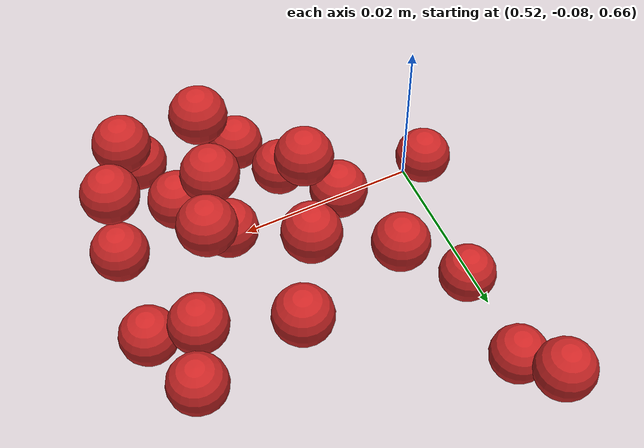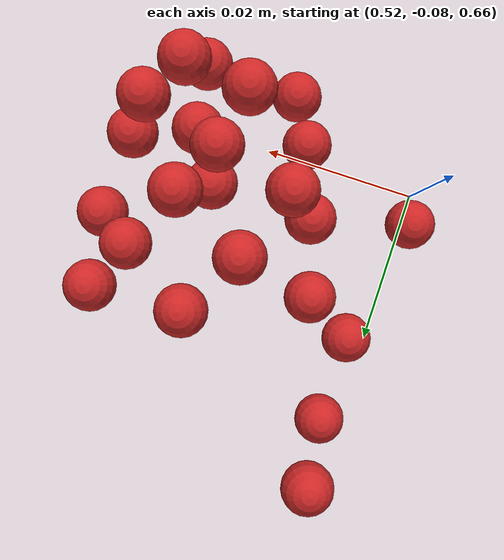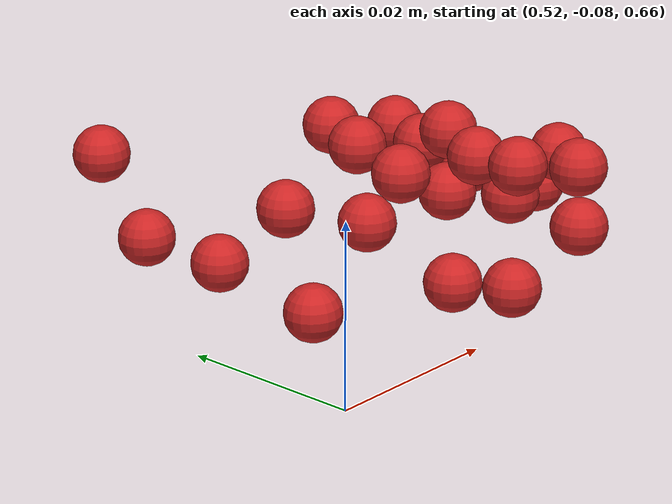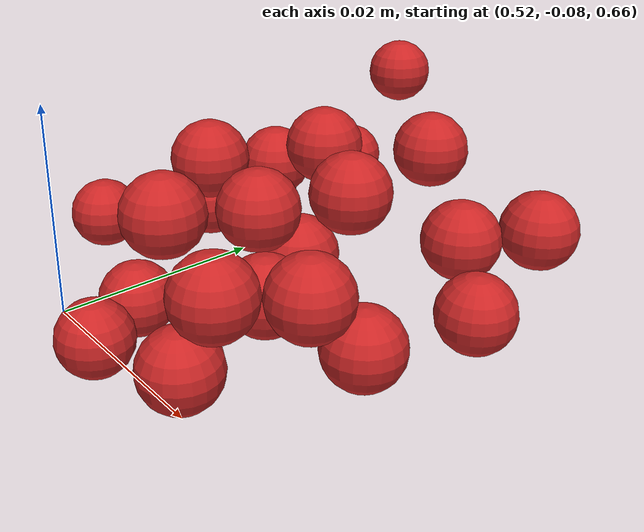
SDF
<sdf version="1.4">
 <world name="default">
  <model name="ground_plane">
   <static>1</static>
   <link name="link">
    <collision name="collision">
     <geometry><plane><normal>0 0 1</normal><size>100 100</size></plane></geometry>
     <surface><friction><ode><mu>100</mu><mu2>50</mu2></ode></friction></surface>
    </collision>
    <visual name="visual">
     <cast_shadows>0</cast_shadows>
     <geometry><plane><normal>0 0 1</normal><size>100 100</size></plane></geometry>
     <material>
      <script><uri>file://media/materials/scripts/gazebo.material</uri><name>Gazebo/Grey</name></script>
     </material>
    </visual>
    <velocity_decay><linear>0</linear><angular>0</angular></velocity_decay>
   </link>
  </model>
  <model name="sphere10">
   <pose>-0.003044 -0.032273 -0.057024 0.008619 -0.006674 -0.000614</pose>
   <link name="link">
    <pose>0.55276 -0.036781 0.732288 0 -0 0</pose>
    <inertial>
     <mass>0.0000001</mass>
     <inertia><ixx>0.00004</ixx><ixy>0</ixy><ixz>0</ixz><iyy>0.00004</iyy><iyz>0</iyz><izz>0.00004</izz></inertia>
    </inertial>
    <collision name="collision">
     <surface>
      <contact><ode><kp>1e+10</kp><kd>1</kd></ode></contact>
      <friction><ode><mu>0.01</mu><mu2>0.01</mu2></ode></friction>
     </surface>
     <geometry><sphere><radius>0.003</radius></sphere></geometry>
    </collision>
    <visual name="visual">
     <geometry><sphere><radius>0.003</radius></sphere></geometry>
     <material>
      <script><uri>file://media/materials/scripts/gazebo.material</uri><name>Gazebo/Red</name></script>
     </material>
    </visual>
    <velocity_decay><linear>0</linear><angular>0</angular></velocity_decay>
   </link>
   <static>0</static>
  </model>
  <model name="sphere14">
   <pose>-0.003198 -0.027274 -0.082089 0.003 -0.03486 0.001054</pose>
   <link name="link">
    <pose>0.55276 -0.030781 0.732288 0 -0 0</pose>
    <inertial>
     <mass>0.0000001</mass>
     <inertia><ixx>0.00004</ixx><ixy>0</ixy><ixz>0</ixz><iyy>0.00004</iyy><iyz>0</iyz><izz>0.00004</izz></inertia>
    </inertial>
    <collision name="collision">
     <surface>
      <contact><ode><kp>1e+10</kp><kd>1</kd></ode></contact>
      <friction><ode><mu>0.01</mu><mu2>0.01</mu2></ode></friction>
     </surface>
     <geometry><sphere><radius>0.003</radius></sphere></geometry>
    </collision>
    <visual name="visual">
     <geometry><sphere><radius>0.003</radius></sphere></geometry>
     <material>
      <script><uri>file://media/materials/scripts/gazebo.material</uri><name>Gazebo/Red</name></script>
     </material>
    </visual>
    <velocity_decay><linear>0</linear><angular>0</angular></velocity_decay>
   </link>
   <static>0</static>
  </model>
  <model name="sphere17">
   <pose>-0.008639 -0.035869 -0.069088 -0.001103 0.000647 -0.00359</pose>
   <link name="link">
    <pose>0.54676 -0.048781 0.738288 0 -0 0</pose>
    <inertial>
     <mass>0.0000001</mass>
     <inertia><ixx>0.00004</ixx><ixy>0</ixy><ixz>0</ixz><iyy>0.00004</iyy><iyz>0</iyz><izz>0.00004</izz></inertia>
    </inertial>
    <collision name="collision">
     <surface>
      <contact><ode><kp>1e+10</kp><kd>1</kd></ode></contact>
      <friction><ode><mu>0.01</mu><mu2>0.01</mu2></ode></friction>
     </surface>
     <geometry><sphere><radius>0.003</radius></sphere></geometry>
    </collision>
    <visual name="visual">
     <geometry><sphere><radius>0.003</radius></sphere></geometry>
     <material>
      <script><uri>file://media/materials/scripts/gazebo.material</uri><name>Gazebo/Red</name></script>
     </material>
    </visual>
    <velocity_decay><linear>0</linear><angular>0</angular></velocity_decay>
   </link>
   <static>0</static>
  </model>
  <model name="sphere53">
   <pose>-0.003036 -0.029592 -0.075829 -0.000146 0.00113 0.000371</pose>
   <link name="link">
    <pose>0.54676 -0.042781 0.750288 0 -0 0</pose>
    <inertial>
     <mass>0.0000001</mass>
     <inertia><ixx>0.00004</ixx><ixy>0</ixy><ixz>0</ixz><iyy>0.00004</iyy><iyz>0</iyz><izz>0.00004</izz></inertia>
    </inertial>
    <collision name="collision">
     <surface>
      <contact><ode><kp>1e+10</kp><kd>1</kd></ode></contact>
      <friction><ode><mu>0.01</mu><mu2>0.01</mu2></ode></friction>
     </surface>
     <geometry><sphere><radius>0.003</radius></sphere></geometry>
    </collision>
    <visual name="visual">
     <geometry><sphere><radius>0.003</radius></sphere></geometry>
     <material>
      <script><uri>file://media/materials/scripts/gazebo.material</uri><name>Gazebo/Red</name></script>
     </material>
    </visual>
    <velocity_decay><linear>0</linear><angular>0</angular></velocity_decay>
   </link>
   <static>0</static>
  </model>
  <model name="sphere54">
   <pose>-0.005047 -0.029325 -0.071434 -0.003857 -0.000189 -0.000838</pose>
   <link name="link">
    <pose>0.55276 -0.042781 0.750288 0 -0 0</pose>
    <inertial>
     <mass>0.0000001</mass>
     <inertia><ixx>0.00004</ixx><ixy>0</ixy><ixz>0</ixz><iyy>0.00004</iyy><iyz>0</iyz><izz>0.00004</izz></inertia>
    </inertial>
    <collision name="collision">
     <surface>
      <contact><ode><kp>1e+10</kp><kd>1</kd></ode></contact>
      <friction><ode><mu>0.01</mu><mu2>0.01</mu2></ode></friction>
     </surface>
     <geometry><sphere><radius>0.003</radius></sphere></geometry>
    </collision>
    <visual name="visual">
     <geometry><sphere><radius>0.003</radius></sphere></geometry>
     <material>
      <script><uri>file://media/materials/scripts/gazebo.material</uri><name>Gazebo/Red</name></script>
     </material>
    </visual>
    <velocity_decay><linear>0</linear><angular>0</angular></velocity_decay>
   </link>
   <static>0</static>
  </model>
  <model name="sphere85">
   <pose>-0.006688 -0.022557 -0.084502 -0.001007 -0.001661 -0.000654</pose>
   <link name="link">
    <pose>0.54676 -0.042781 0.762288 0 -0 0</pose>
    <inertial>
     <mass>0.0000001</mass>
     <inertia><ixx>0.00004</ixx><ixy>0</ixy><ixz>0</ixz><iyy>0.00004</iyy><iyz>0</iyz><izz>0.00004</izz></inertia>
    </inertial>
    <collision name="collision">
     <surface>
      <contact><ode><kp>1e+10</kp><kd>1</kd></ode></contact>
      <friction><ode><mu>0.01</mu><mu2>0.01</mu2></ode></friction>
     </surface>
     <geometry><sphere><radius>0.003</radius></sphere></geometry>
    </collision>
    <visual name="visual">
     <geometry><sphere><radius>0.003</radius></sphere></geometry>
     <material>
      <script><uri>file://media/materials/scripts/gazebo.material</uri><name>Gazebo/Red</name></script>
     </material>
    </visual>
    <velocity_decay><linear>0</linear><angular>0</angular></velocity_decay>
   </link>
   <static>0</static>
  </model>
  <model name="sphere88">
   <pose>-0.008878 -0.026457 -0.089796 -0.00021 -0.002602 -8.1e-05</pose>
   <link name="link">
    <pose>0.54076 -0.036781 0.762288 0 -0 0</pose>
    <inertial>
     <mass>0.0000001</mass>
     <inertia><ixx>0.00004</ixx><ixy>0</ixy><ixz>0</ixz><iyy>0.00004</iyy><iyz>0</iyz><izz>0.00004</izz></inertia>
    </inertial>
    <collision name="collision">
     <surface>
      <contact><ode><kp>1e+10</kp><kd>1</kd></ode></contact>
      <friction><ode><mu>0.01</mu><mu2>0.01</mu2></ode></friction>
     </surface>
     <geometry><sphere><radius>0.003</radius></sphere></geometry>
    </collision>
    <visual name="visual">
     <geometry><sphere><radius>0.003</radius></sphere></geometry>
     <material>
      <script><uri>file://media/materials/scripts/gazebo.material</uri><name>Gazebo/Red</name></script>
     </material>
    </visual>
    <velocity_decay><linear>0</linear><angular>0</angular></velocity_decay>
   </link>
   <static>0</static>
  </model>
  <model name="sphere90">
   <pose>-0.003075 -0.025356 -0.086032 0.000942 0.00257 0.000556</pose>
   <link name="link">
    <pose>0.55276 -0.036781 0.762288 0 -0 0</pose>
    <inertial>
     <mass>0.0000001</mass>
     <inertia><ixx>0.00004</ixx><ixy>0</ixy><ixz>0</ixz><iyy>0.00004</iyy><iyz>0</iyz><izz>0.00004</izz></inertia>
    </inertial>
    <collision name="collision">
     <surface>
      <contact><ode><kp>1e+10</kp><kd>1</kd></ode></contact>
      <friction><ode><mu>0.01</mu><mu2>0.01</mu2></ode></friction>
     </surface>
     <geometry><sphere><radius>0.003</radius></sphere></geometry>
    </collision>
    <visual name="visual">
     <geometry><sphere><radius>0.003</radius></sphere></geometry>
     <material>
      <script><uri>file://media/materials/scripts/gazebo.material</uri><name>Gazebo/Red</name></script>
     </material>
    </visual>
    <velocity_decay><linear>0</linear><angular>0</angular></velocity_decay>
   </link>
   <static>0</static>
  </model>
  <model name="sphere101">
   <pose>-0.006457 -0.02366 -0.099519 0.00698 -0.010008 0.000154</pose>
   <link name="link">
    <pose>0.54676 -0.042781 0.768288 0 -0 0</pose>
    <inertial>
     <mass>0.0000001</mass>
     <inertia><ixx>0.00004</ixx><ixy>0</ixy><ixz>0</ixz><iyy>0.00004</iyy><iyz>0</iyz><izz>0.00004</izz></inertia>
    </inertial>
    <collision name="collision">
     <surface>
      <contact><ode><kp>1e+10</kp><kd>1</kd></ode></contact>
      <friction><ode><mu>0.01</mu><mu2>0.01</mu2></ode></friction>
     </surface>
     <geometry><sphere><radius>0.003</radius></sphere></geometry>
    </collision>
    <visual name="visual">
     <geometry><sphere><radius>0.003</radius></sphere></geometry>
     <material>
      <script><uri>file://media/materials/scripts/gazebo.material</uri><name>Gazebo/Red</name></script>
     </material>
    </visual>
    <velocity_decay><linear>0</linear><angular>0</angular></velocity_decay>
   </link>
   <static>0</static>
  </model>
  <model name="sphere104">
   <pose>-0.004774 -0.054484 -0.110589 -0.021177 -0.01989 -0.000486</pose>
   <link name="link">
    <pose>0.54076 -0.036781 0.768288 0 -0 0</pose>
    <inertial>
     <mass>0.0000001</mass>
     <inertia><ixx>0.00004</ixx><ixy>0</ixy><ixz>0</ixz><iyy>0.00004</iyy><iyz>0</iyz><izz>0.00004</izz></inertia>
    </inertial>
    <collision name="collision">
     <surface>
      <contact><ode><kp>1e+10</kp><kd>1</kd></ode></contact>
      <friction><ode><mu>0.01</mu><mu2>0.01</mu2></ode></friction>
     </surface>
     <geometry><sphere><radius>0.003</radius></sphere></geometry>
    </collision>
    <visual name="visual">
     <geometry><sphere><radius>0.003</radius></sphere></geometry>
     <material>
      <script><uri>file://media/materials/scripts/gazebo.material</uri><name>Gazebo/Red</name></script>
     </material>
    </visual>
    <velocity_decay><linear>0</linear><angular>0</angular></velocity_decay>
   </link>
   <static>0</static>
  </model>
  <model name="sphere106">
   <pose>-0.006917 -0.013689 -0.107481 -0.01077 -0.028195 -0.001453</pose>
   <link name="link">
    <pose>0.55276 -0.036781 0.768288 0 -0 0</pose>
    <inertial>
     <mass>0.0000001</mass>
     <inertia><ixx>0.00004</ixx><ixy>0</ixy><ixz>0</ixz><iyy>0.00004</iyy><iyz>0</iyz><izz>0.00004</izz></inertia>
    </inertial>
    <collision name="collision">
     <surface>
      <contact><ode><kp>1e+10</kp><kd>1</kd></ode></contact>
      <friction><ode><mu>0.01</mu><mu2>0.01</mu2></ode></friction>
     </surface>
     <geometry><sphere><radius>0.003</radius></sphere></geometry>
    </collision>
    <visual name="visual">
     <geometry><sphere><radius>0.003</radius></sphere></geometry>
     <material>
      <script><uri>file://media/materials/scripts/gazebo.material</uri><name>Gazebo/Red</name></script>
     </material>
    </visual>
    <velocity_decay><linear>0</linear><angular>0</angular></velocity_decay>
   </link>
   <static>0</static>
  </model>
  <model name="sphere114">
   <pose>-0.00947 -0.026575 -0.097066 0.029297 0.006186 0.022599</pose>
   <link name="link">
    <pose>0.55276 -0.048781 0.774288 0 -0 0</pose>
    <inertial>
     <mass>0.0000001</mass>
     <inertia><ixx>0.00004</ixx><ixy>0</ixy><ixz>0</ixz><iyy>0.00004</iyy><iyz>0</iyz><izz>0.00004</izz></inertia>
    </inertial>
    <collision name="collision">
     <surface>
      <contact><ode><kp>1e+10</kp><kd>1</kd></ode></contact>
      <friction><ode><mu>0.01</mu><mu2>0.01</mu2></ode></friction>
     </surface>
     <geometry><sphere><radius>0.003</radius></sphere></geometry>
    </collision>
    <visual name="visual">
     <geometry><sphere><radius>0.003</radius></sphere></geometry>
     <material>
      <script><uri>file://media/materials/scripts/gazebo.material</uri><name>Gazebo/Red</name></script>
     </material>
    </visual>
    <velocity_decay><linear>0</linear><angular>0</angular></velocity_decay>
   </link>
   <static>0</static>
  </model>
  <model name="sphere117">
   <pose>-0.007979 -0.030588 -0.097776 0.0001 -0.004138 -0.00021</pose>
   <link name="link">
    <pose>0.54676 -0.042781 0.774288 0 -0 0</pose>
    <inertial>
     <mass>0.0000001</mass>
     <inertia><ixx>0.00004</ixx><ixy>0</ixy><ixz>0</ixz><iyy>0.00004</iyy><iyz>0</iyz><izz>0.00004</izz></inertia>
    </inertial>
    <collision name="collision">
     <surface>
      <contact><ode><kp>1e+10</kp><kd>1</kd></ode></contact>
      <friction><ode><mu>0.01</mu><mu2>0.01</mu2></ode></friction>
     </surface>
     <geometry><sphere><radius>0.003</radius></sphere></geometry>
    </collision>
    <visual name="visual">
     <geometry><sphere><radius>0.003</radius></sphere></geometry>
     <material>
      <script><uri>file://media/materials/scripts/gazebo.material</uri><name>Gazebo/Red</name></script>
     </material>
    </visual>
    <velocity_decay><linear>0</linear><angular>0</angular></velocity_decay>
   </link>
   <static>0</static>
  </model>
  <model name="sphere118">
   <pose>-0.002918 -0.026214 -0.098428 0.002103 0.007452 0.009653</pose>
   <link name="link">
    <pose>0.55276 -0.042781 0.774288 0 -0 0</pose>
    <inertial>
     <mass>0.0000001</mass>
     <inertia><ixx>0.00004</ixx><ixy>0</ixy><ixz>0</ixz><iyy>0.00004</iyy><iyz>0</iyz><izz>0.00004</izz></inertia>
    </inertial>
    <collision name="collision">
     <surface>
      <contact><ode><kp>1e+10</kp><kd>1</kd></ode></contact>
      <friction><ode><mu>0.01</mu><mu2>0.01</mu2></ode></friction>
     </surface>
     <geometry><sphere><radius>0.003</radius></sphere></geometry>
    </collision>
    <visual name="visual">
     <geometry><sphere><radius>0.003</radius></sphere></geometry>
     <material>
      <script><uri>file://media/materials/scripts/gazebo.material</uri><name>Gazebo/Red</name></script>
     </material>
    </visual>
    <velocity_decay><linear>0</linear><angular>0</angular></velocity_decay>
   </link>
   <static>0</static>
  </model>
  <model name="sphere119">
   <pose>-0.005775 -0.031551 -0.100142 -0.000115 0.003088 -0.001442</pose>
   <link name="link">
    <pose>0.55876 -0.042781 0.774288 0 -0 0</pose>
    <inertial>
     <mass>0.0000001</mass>
     <inertia><ixx>0.00004</ixx><ixy>0</ixy><ixz>0</ixz><iyy>0.00004</iyy><iyz>0</iyz><izz>0.00004</izz></inertia>
    </inertial>
    <collision name="collision">
     <surface>
      <contact><ode><kp>1e+10</kp><kd>1</kd></ode></contact>
      <friction><ode><mu>0.01</mu><mu2>0.01</mu2></ode></friction>
     </surface>
     <geometry><sphere><radius>0.003</radius></sphere></geometry>
    </collision>
    <visual name="visual">
     <geometry><sphere><radius>0.003</radius></sphere></geometry>
     <material>
      <script><uri>file://media/materials/scripts/gazebo.material</uri><name>Gazebo/Red</name></script>
     </material>
    </visual>
    <velocity_decay><linear>0</linear><angular>0</angular></velocity_decay>
   </link>
   <static>0</static>
  </model>
  <model name="sphere121">
   <pose>-0.005887 -0.034188 -0.095382 -0.005977 0.002332 0.01612</pose>
   <link name="link">
    <pose>0.54676 -0.036781 0.774288 0 -0 0</pose>
    <inertial>
     <mass>0.0000001</mass>
     <inertia><ixx>0.00004</ixx><ixy>0</ixy><ixz>0</ixz><iyy>0.00004</iyy><iyz>0</iyz><izz>0.00004</izz></inertia>
    </inertial>
    <collision name="collision">
     <surface>
      <contact><ode><kp>1e+10</kp><kd>1</kd></ode></contact>
      <friction><ode><mu>0.01</mu><mu2>0.01</mu2></ode></friction>
     </surface>
     <geometry><sphere><radius>0.003</radius></sphere></geometry>
    </collision>
    <visual name="visual">
     <geometry><sphere><radius>0.003</radius></sphere></geometry>
     <material>
      <script><uri>file://media/materials/scripts/gazebo.material</uri><name>Gazebo/Red</name></script>
     </material>
    </visual>
    <velocity_decay><linear>0</linear><angular>0</angular></velocity_decay>
   </link>
   <static>0</static>
  </model>
  <model name="sphere122">
   <pose>-0.002722 -0.024175 -0.096843 -0.004733 0.005197 0.000918</pose>
   <link name="link">
    <pose>0.55276 -0.036781 0.774288 0 -0 0</pose>
    <inertial>
     <mass>0.0000001</mass>
     <inertia><ixx>0.00004</ixx><ixy>0</ixy><ixz>0</ixz><iyy>0.00004</iyy><iyz>0</iyz><izz>0.00004</izz></inertia>
    </inertial>
    <collision name="collision">
     <surface>
      <contact><ode><kp>1e+10</kp><kd>1</kd></ode></contact>
      <friction><ode><mu>0.01</mu><mu2>0.01</mu2></ode></friction>
     </surface>
     <geometry><sphere><radius>0.003</radius></sphere></geometry>
    </collision>
    <visual name="visual">
     <geometry><sphere><radius>0.003</radius></sphere></geometry>
     <material>
      <script><uri>file://media/materials/scripts/gazebo.material</uri><name>Gazebo/Red</name></script>
     </material>
    </visual>
    <velocity_decay><linear>0</linear><angular>0</angular></velocity_decay>
   </link>
   <static>0</static>
  </model>
  <model name="sphere126">
   <pose>-0.009123 -0.028625 -0.119494 -0.01778 -0.025152 -0.006907</pose>
   <link name="link">
    <pose>0.55276 -0.030781 0.774288 0 -0 0</pose>
    <inertial>
     <mass>0.0000001</mass>
     <inertia><ixx>0.00004</ixx><ixy>0</ixy><ixz>0</ixz><iyy>0.00004</iyy><iyz>0</iyz><izz>0.00004</izz></inertia>
    </inertial>
    <collision name="collision">
     <surface>
      <contact><ode><kp>1e+10</kp><kd>1</kd></ode></contact>
      <friction><ode><mu>0.01</mu><mu2>0.01</mu2></ode></friction>
     </surface>
     <geometry><sphere><radius>0.003</radius></sphere></geometry>
    </collision>
    <visual name="visual">
     <geometry><sphere><radius>0.003</radius></sphere></geometry>
     <material>
      <script><uri>file://media/materials/scripts/gazebo.material</uri><name>Gazebo/Red</name></script>
     </material>
    </visual>
    <velocity_decay><linear>0</linear><angular>0</angular></velocity_decay>
   </link>
   <static>0</static>
  </model>
  <model name="sphere134">
   <pose>-0.007349 -0.033048 -0.10442 0.001913 0.003394 -0.000451</pose>
   <link name="link">
    <pose>0.55276 -0.042781 0.780288 0 -0 0</pose>
    <inertial>
     <mass>0.0000001</mass>
     <inertia><ixx>0.00004</ixx><ixy>0</ixy><ixz>0</ixz><iyy>0.00004</iyy><iyz>0</iyz><izz>0.00004</izz></inertia>
    </inertial>
    <collision name="collision">
     <surface>
      <contact><ode><kp>1e+10</kp><kd>1</kd></ode></contact>
      <friction><ode><mu>0.01</mu><mu2>0.01</mu2></ode></friction>
     </surface>
     <geometry><sphere><radius>0.003</radius></sphere></geometry>
    </collision>
    <visual name="visual">
     <geometry><sphere><radius>0.003</radius></sphere></geometry>
     <material>
      <script><uri>file://media/materials/scripts/gazebo.material</uri><name>Gazebo/Red</name></script>
     </material>
    </visual>
    <velocity_decay><linear>0</linear><angular>0</angular></velocity_decay>
   </link>
   <static>0</static>
  </model>
  <model name="sphere147">
   <pose>-0.00888 -0.025933 -0.105764 0.006134 0.005587 0.001464</pose>
   <link name="link">
    <pose>0.55876 -0.048781 0.786288 0 -0 0</pose>
    <inertial>
     <mass>0.0000001</mass>
     <inertia><ixx>0.00004</ixx><ixy>0</ixy><ixz>0</ixz><iyy>0.00004</iyy><iyz>0</iyz><izz>0.00004</izz></inertia>
    </inertial>
    <collision name="collision">
     <surface>
      <contact><ode><kp>1e+10</kp><kd>1</kd></ode></contact>
      <friction><ode><mu>0.01</mu><mu2>0.01</mu2></ode></friction>
     </surface>
     <geometry><sphere><radius>0.003</radius></sphere></geometry>
    </collision>
    <visual name="visual">
     <geometry><sphere><radius>0.003</radius></sphere></geometry>
     <material>
      <script><uri>file://media/materials/scripts/gazebo.material</uri><name>Gazebo/Red</name></script>
     </material>
    </visual>
    <velocity_decay><linear>0</linear><angular>0</angular></velocity_decay>
   </link>
   <static>0</static>
  </model>
  <model name="sphere166">
   <pose>-0.002646 -0.039911 -0.113902 0.001873 0.00137 0.000652</pose>
   <link name="link">
    <pose>0.55276 -0.042781 0.792288 0 -0 0</pose>
    <inertial>
     <mass>0.0000001</mass>
     <inertia><ixx>0.00004</ixx><ixy>0</ixy><ixz>0</ixz><iyy>0.00004</iyy><iyz>0</iyz><izz>0.00004</izz></inertia>
    </inertial>
    <collision name="collision">
     <surface>
      <contact><ode><kp>1e+10</kp><kd>1</kd></ode></contact>
      <friction><ode><mu>0.01</mu><mu2>0.01</mu2></ode></friction>
     </surface>
     <geometry><sphere><radius>0.003</radius></sphere></geometry>
    </collision>
    <visual name="visual">
     <geometry><sphere><radius>0.003</radius></sphere></geometry>
     <material>
      <script><uri>file://media/materials/scripts/gazebo.material</uri><name>Gazebo/Red</name></script>
     </material>
    </visual>
    <velocity_decay><linear>0</linear><angular>0</angular></velocity_decay>
   </link>
   <static>0</static>
  </model>
  <model name="sphere177">
   <pose>-0.006244 -0.029353 -0.132651 0.002717 -0.006288 -0.000518</pose>
   <link name="link">
    <pose>0.54676 -0.048781 0.798288 0 -0 0</pose>
    <inertial>
     <mass>0.0000001</mass>
     <inertia><ixx>0.00004</ixx><ixy>0</ixy><ixz>0</ixz><iyy>0.00004</iyy><iyz>0</iyz><izz>0.00004</izz></inertia>
    </inertial>
    <collision name="collision">
     <surface>
      <contact><ode><kp>1e+10</kp><kd>1</kd></ode></contact>
      <friction><ode><mu>0.01</mu><mu2>0.01</mu2></ode></friction>
     </surface>
     <geometry><sphere><radius>0.003</radius></sphere></geometry>
    </collision>
    <visual name="visual">
     <geometry><sphere><radius>0.003</radius></sphere></geometry>
     <material>
      <script><uri>file://media/materials/scripts/gazebo.material</uri><name>Gazebo/Red</name></script>
     </material>
    </visual>
    <velocity_decay><linear>0</linear><angular>0</angular></velocity_decay>
   </link>
   <static>0</static>
  </model>
  <model name="sphere178">
   <pose>-0.006376 -0.032261 -0.120742 0.001025 -0.003846 -0.000911</pose>
   <link name="link">
    <pose>0.55276 -0.048781 0.798288 0 -0 0</pose>
    <inertial>
     <mass>0.0000001</mass>
     <inertia><ixx>0.00004</ixx><ixy>0</ixy><ixz>0</ixz><iyy>0.00004</iyy><iyz>0</iyz><izz>0.00004</izz></inertia>
    </inertial>
    <collision name="collision">
     <surface>
      <contact><ode><kp>1e+10</kp><kd>1</kd></ode></contact>
      <friction><ode><mu>0.01</mu><mu2>0.01</mu2></ode></friction>
     </surface>
     <geometry><sphere><radius>0.003</radius></sphere></geometry>
    </collision>
    <visual name="visual">
     <geometry><sphere><radius>0.003</radius></sphere></geometry>
     <material>
      <script><uri>file://media/materials/scripts/gazebo.material</uri><name>Gazebo/Red</name></script>
     </material>
    </visual>
    <velocity_decay><linear>0</linear><angular>0</angular></velocity_decay>
   </link>
   <static>0</static>
  </model>
 </world>
</sdf>
